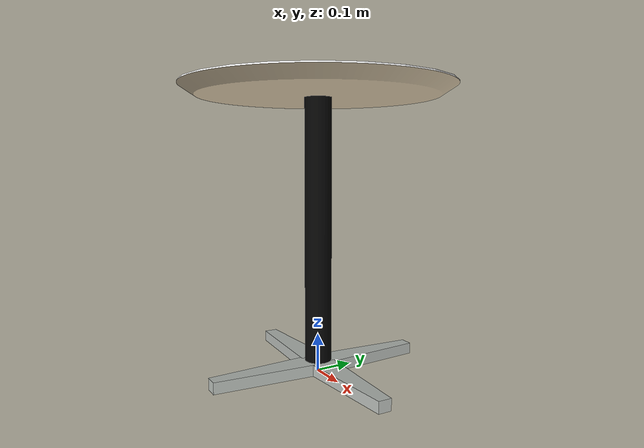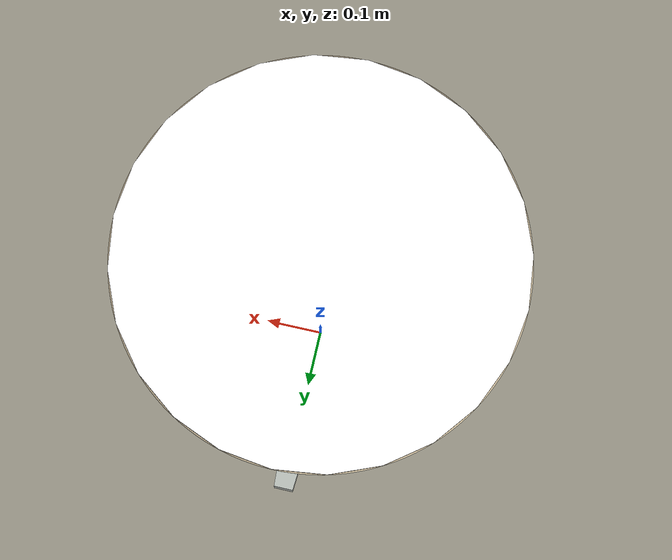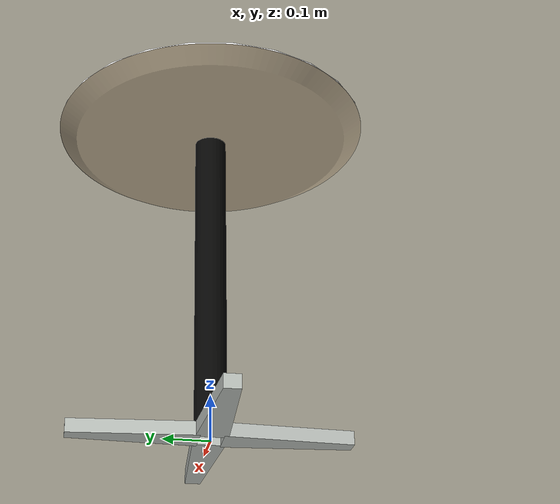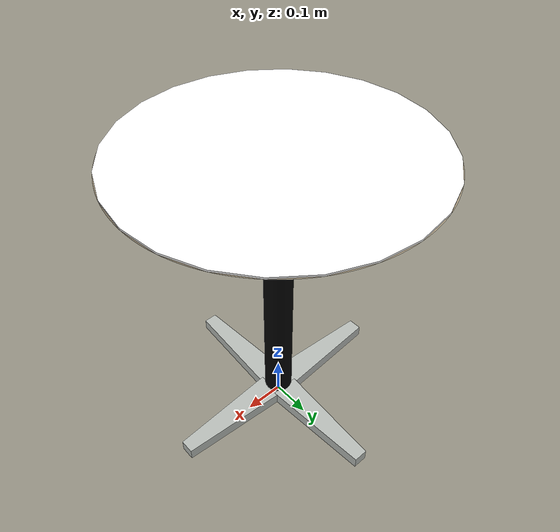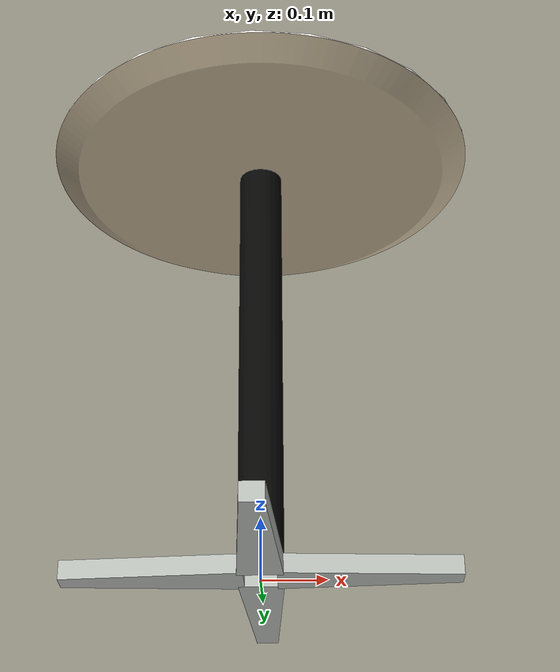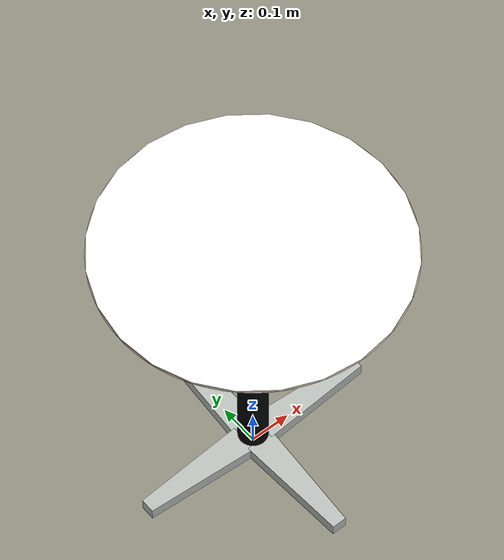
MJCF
<?xml version="1.0" encoding="utf-8"?>
<mujoco model="primitive_round_table">
  <compiler angle="radian" autolimits="true"/>

  <asset>
    <mesh name="round_table_tapered_underside" file="assets/visual/table_tapered_underside.obj"/>
    <mesh name="round_table_trapezoid_foot" file="assets/visual/table_trapezoid_foot.obj"/>
    <material name="round_table_white_top_mat" rgba="1 1 1 1" specular="0.28" shininess="0.35" reflectance="0.04"/>
    <material name="round_table_warm_underside_mat" rgba="0.74 0.68 0.57 1" specular="0.22" shininess="0.30" reflectance="0.03"/>
    <material name="round_table_black_leg_mat" rgba="0.02 0.02 0.018 1" specular="0.16" shininess="0.20" reflectance="0.01"/>
    <material name="round_table_g1_gray_foot_mat" rgba="0.72 0.74 0.72 1" specular="1.0" shininess="1.0" reflectance="0.45"/>
  </asset>

  <worldbody>
    <body name="object">
      <geom name="top_visual" type="cylinder" pos="0 0 0.748" size="0.35 0.002"
            material="round_table_white_top_mat" group="1" contype="0" conaffinity="0" mass="0"/>
      <geom name="top_underside_visual" type="mesh" mesh="round_table_tapered_underside"
            material="round_table_warm_underside_mat" group="1" contype="0" conaffinity="0" mass="0"/>
      <geom name="top_collision" type="cylinder" pos="0 0 0.735" size="0.35 0.015"
            group="3" contype="1" conaffinity="1" condim="4" friction="1.0 0.05 0.01"
            solref="0.004 1.0" solimp="0.95 0.99 0.001" rgba="0 0 0 0"/>

      <geom name="pedestal_visual" type="cylinder" pos="0 0 0.375" size="0.035 0.345"
            material="round_table_black_leg_mat" group="1" contype="0" conaffinity="0" mass="0"/>
      <geom name="pedestal_collision" type="cylinder" pos="0 0 0.375" size="0.035 0.345"
            group="3" contype="1" conaffinity="1" condim="3" friction="0.8 0.03 0.01"
            solref="0.006 1.0" solimp="0.95 0.99 0.001" rgba="0 0 0 0"/>

      <geom name="base_foot_x_positive_visual" type="mesh" mesh="round_table_trapezoid_foot"
            material="round_table_g1_gray_foot_mat" group="1" contype="0" conaffinity="0" mass="0"/>
      <geom name="base_foot_x_positive_collision" type="box" pos="0.150 0 0.015" size="0.150 0.0175 0.015"
            group="3" contype="1" conaffinity="1" condim="3" friction="0.8 0.03 0.01"
            solref="0.006 1.0" solimp="0.95 0.99 0.001" rgba="0 0 0 0"/>

      <geom name="base_foot_x_negative_visual" type="mesh" mesh="round_table_trapezoid_foot" euler="0 0 3.141592653589793"
            material="round_table_g1_gray_foot_mat" group="1" contype="0" conaffinity="0" mass="0"/>
      <geom name="base_foot_x_negative_collision" type="box" pos="-0.150 0 0.015" size="0.150 0.0175 0.015"
            group="3" contype="1" conaffinity="1" condim="3" friction="0.8 0.03 0.01"
            solref="0.006 1.0" solimp="0.95 0.99 0.001" rgba="0 0 0 0"/>

      <geom name="base_foot_y_positive_visual" type="mesh" mesh="round_table_trapezoid_foot" euler="0 0 1.570796326794897"
            material="round_table_g1_gray_foot_mat" group="1" contype="0" conaffinity="0" mass="0"/>
      <geom name="base_foot_y_positive_collision" type="box" pos="0 0.150 0.015" size="0.0175 0.150 0.015"
            group="3" contype="1" conaffinity="1" condim="3" friction="0.8 0.03 0.01"
            solref="0.006 1.0" solimp="0.95 0.99 0.001" rgba="0 0 0 0"/>

      <geom name="base_foot_y_negative_visual" type="mesh" mesh="round_table_trapezoid_foot" euler="0 0 -1.570796326794897"
            material="round_table_g1_gray_foot_mat" group="1" contype="0" conaffinity="0" mass="0"/>
      <geom name="base_foot_y_negative_collision" type="box" pos="0 -0.150 0.015" size="0.0175 0.150 0.015"
            group="3" contype="1" conaffinity="1" condim="3" friction="0.8 0.03 0.01"
            solref="0.006 1.0" solimp="0.95 0.99 0.001" rgba="0 0 0 0"/>

      <site name="table_center_site" pos="0 0 0.750" size="0.012" rgba="0.1 0.5 1.0 0.0"/>
    </body>
  </worldbody>
</mujoco>
